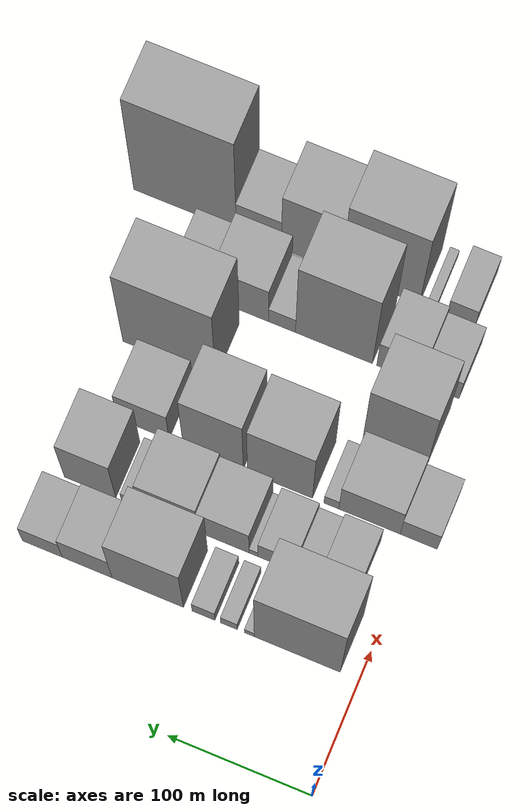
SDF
<sdf version="1.6">
 <world name="default">
  <model name="building_22">
   <static>1</static>
   <pose>100.0000 43.3936 0 0.000000 0.000000 0.000000</pose>
   <link name="link">
    <pose>0 0 82.50 0 0 0</pose>
    <collision name="collision"><geometry><box><size>40.0000 59.7189 165.0000</size></box></geometry></collision>
    <visual name="visual">
     <cast_shadows>0</cast_shadows>
     <geometry><box><size>40.0000 59.7189 165.0000</size></box></geometry>
     <material>
      <script>
       <uri>model://grey_wall/materials/scripts</uri>
       <uri>model://grey_wall/materials/textures</uri>
       <name>vrc/grey_wall</name>
      </script>
     </material>
    </visual>
   </link>
  </model>
  <model name="building_23">
   <static>1</static>
   <pose>100.0000 76.6870 0 0.000000 0.000000 0.000000</pose>
   <link name="link">
    <pose>0 0 7.50 0 0 0</pose>
    <collision name="collision"><geometry><box><size>40.0000 6.8679 15.0000</size></box></geometry></collision>
    <visual name="visual">
     <cast_shadows>0</cast_shadows>
     <geometry><box><size>40.0000 6.8679 15.0000</size></box></geometry>
     <material>
      <script>
       <uri>model://grey_wall/materials/scripts</uri>
       <uri>model://grey_wall/materials/textures</uri>
       <name>vrc/grey_wall</name>
      </script>
     </material>
    </visual>
   </link>
  </model>
  <model name="building_24">
   <static>1</static>
   <pose>100.0000 90.9002 0 0.000000 0.000000 0.000000</pose>
   <link name="link">
    <pose>0 0 12.00 0 0 0</pose>
    <collision name="collision"><geometry><box><size>40.0000 11.5585 24.0000</size></box></geometry></collision>
    <visual name="visual">
     <cast_shadows>0</cast_shadows>
     <geometry><box><size>40.0000 11.5585 24.0000</size></box></geometry>
     <material>
      <script>
       <uri>model://grey_wall/materials/scripts</uri>
       <uri>model://grey_wall/materials/textures</uri>
       <name>vrc/grey_wall</name>
      </script>
     </material>
    </visual>
   </link>
  </model>
  <model name="building_25">
   <static>1</static>
   <pose>100.0000 108.6364 0 0.000000 0.000000 0.000000</pose>
   <link name="link">
    <pose>0 0 15.00 0 0 0</pose>
    <collision name="collision"><geometry><box><size>40.0000 15.9138 30.0000</size></box></geometry></collision>
    <visual name="visual">
     <cast_shadows>0</cast_shadows>
     <geometry><box><size>40.0000 15.9138 30.0000</size></box></geometry>
     <material>
      <script>
       <uri>model://grey_wall/materials/scripts</uri>
       <uri>model://grey_wall/materials/textures</uri>
       <name>vrc/grey_wall</name>
      </script>
     </material>
    </visual>
   </link>
  </model>
  <model name="building_26">
   <static>1</static>
   <pose>100.0000 147.6354 0 0.000000 0.000000 0.000000</pose>
   <link name="link">
    <pose>0 0 63.00 0 0 0</pose>
    <collision name="collision"><geometry><box><size>40.0000 50.0843 126.0000</size></box></geometry></collision>
    <visual name="visual">
     <cast_shadows>0</cast_shadows>
     <geometry><box><size>40.0000 50.0843 126.0000</size></box></geometry>
     <material>
      <script>
       <uri>model://grey_wall/materials/scripts</uri>
       <uri>model://grey_wall/materials/textures</uri>
       <name>vrc/grey_wall</name>
      </script>
     </material>
    </visual>
   </link>
  </model>
  <model name="building_27">
   <static>1</static>
   <pose>100.0000 190.1945 0 0.000000 0.000000 0.000000</pose>
   <link name="link">
    <pose>0 0 31.50 0 0 0</pose>
    <collision name="collision"><geometry><box><size>40.0000 35.0339 63.0000</size></box></geometry></collision>
    <visual name="visual">
     <cast_shadows>0</cast_shadows>
     <geometry><box><size>40.0000 35.0339 63.0000</size></box></geometry>
     <material>
      <script>
       <uri>model://grey_wall/materials/scripts</uri>
       <uri>model://grey_wall/materials/textures</uri>
       <name>vrc/grey_wall</name>
      </script>
     </material>
    </visual>
   </link>
  </model>
  <model name="building_28">
   <static>1</static>
   <pose>100.0000 221.5984 0 0.000000 0.000000 0.000000</pose>
   <link name="link">
    <pose>0 0 24.00 0 0 0</pose>
    <collision name="collision"><geometry><box><size>40.0000 27.7739 48.0000</size></box></geometry></collision>
    <visual name="visual">
     <cast_shadows>0</cast_shadows>
     <geometry><box><size>40.0000 27.7739 48.0000</size></box></geometry>
     <material>
      <script>
       <uri>model://grey_wall/materials/scripts</uri>
       <uri>model://grey_wall/materials/textures</uri>
       <name>vrc/grey_wall</name>
      </script>
     </material>
    </visual>
   </link>
  </model>
  <model name="building_69">
   <static>1</static>
   <pose>149.0000 34.6953 0 0.000000 0.000000 0.000000</pose>
   <link name="link">
    <pose>0 0 22.50 0 0 0</pose>
    <collision name="collision"><geometry><box><size>40.0000 26.3077 45.0000</size></box></geometry></collision>
    <visual name="visual">
     <cast_shadows>0</cast_shadows>
     <geometry><box><size>40.0000 26.3077 45.0000</size></box></geometry>
     <material>
      <script>
       <uri>model://grey_wall/materials/scripts</uri>
       <uri>model://grey_wall/materials/textures</uri>
       <name>vrc/grey_wall</name>
      </script>
     </material>
    </visual>
   </link>
  </model>
  <model name="building_70">
   <static>1</static>
   <pose>149.0000 56.5618 0 0.000000 0.000000 0.000000</pose>
   <link name="link">
    <pose>0 0 15.00 0 0 0</pose>
    <collision name="collision"><geometry><box><size>40.0000 17.4253 30.0000</size></box></geometry></collision>
    <visual name="visual">
     <cast_shadows>0</cast_shadows>
     <geometry><box><size>40.0000 17.4253 30.0000</size></box></geometry>
     <material>
      <script>
       <uri>model://grey_wall/materials/scripts</uri>
       <uri>model://grey_wall/materials/textures</uri>
       <name>vrc/grey_wall</name>
      </script>
     </material>
    </visual>
   </link>
  </model>
  <model name="building_71">
   <static>1</static>
   <pose>149.0000 78.2791 0 0.000000 0.000000 0.000000</pose>
   <link name="link">
    <pose>0 0 22.50 0 0 0</pose>
    <collision name="collision"><geometry><box><size>40.0000 26.0093 45.0000</size></box></geometry></collision>
    <visual name="visual">
     <cast_shadows>0</cast_shadows>
     <geometry><box><size>40.0000 26.0093 45.0000</size></box></geometry>
     <material>
      <script>
       <uri>model://grey_wall/materials/scripts</uri>
       <uri>model://grey_wall/materials/textures</uri>
       <name>vrc/grey_wall</name>
      </script>
     </material>
    </visual>
   </link>
  </model>
  <model name="building_72">
   <static>1</static>
   <pose>149.0000 94.3080 0 0.000000 0.000000 0.000000</pose>
   <link name="link">
    <pose>0 0 7.50 0 0 0</pose>
    <collision name="collision"><geometry><box><size>40.0000 6.0483 15.0000</size></box></geometry></collision>
    <visual name="visual">
     <cast_shadows>0</cast_shadows>
     <geometry><box><size>40.0000 6.0483 15.0000</size></box></geometry>
     <material>
      <script>
       <uri>model://grey_wall/materials/scripts</uri>
       <uri>model://grey_wall/materials/textures</uri>
       <name>vrc/grey_wall</name>
      </script>
     </material>
    </visual>
   </link>
  </model>
  <model name="building_73">
   <static>1</static>
   <pose>149.0000 115.4321 0 0.000000 0.000000 0.000000</pose>
   <link name="link">
    <pose>0 0 33.00 0 0 0</pose>
    <collision name="collision"><geometry><box><size>40.0000 36.2000 66.0000</size></box></geometry></collision>
    <visual name="visual">
     <cast_shadows>0</cast_shadows>
     <geometry><box><size>40.0000 36.2000 66.0000</size></box></geometry>
     <material>
      <script>
       <uri>model://grey_wall/materials/scripts</uri>
       <uri>model://grey_wall/materials/textures</uri>
       <name>vrc/grey_wall</name>
      </script>
     </material>
    </visual>
   </link>
  </model>
  <model name="building_74">
   <static>1</static>
   <pose>149.0000 154.6363 0 0.000000 0.000000 0.000000</pose>
   <link name="link">
    <pose>0 0 37.50 0 0 0</pose>
    <collision name="collision"><geometry><box><size>40.0000 42.2082 75.0000</size></box></geometry></collision>
    <visual name="visual">
     <cast_shadows>0</cast_shadows>
     <geometry><box><size>40.0000 42.2082 75.0000</size></box></geometry>
     <material>
      <script>
       <uri>model://grey_wall/materials/scripts</uri>
       <uri>model://grey_wall/materials/textures</uri>
       <name>vrc/grey_wall</name>
      </script>
     </material>
    </visual>
   </link>
  </model>
  <model name="building_75">
   <static>1</static>
   <pose>149.0000 181.4023 0 0.000000 0.000000 0.000000</pose>
   <link name="link">
    <pose>0 0 12.00 0 0 0</pose>
    <collision name="collision"><geometry><box><size>40.0000 11.3238 24.0000</size></box></geometry></collision>
    <visual name="visual">
     <cast_shadows>0</cast_shadows>
     <geometry><box><size>40.0000 11.3238 24.0000</size></box></geometry>
     <material>
      <script>
       <uri>model://grey_wall/materials/scripts</uri>
       <uri>model://grey_wall/materials/textures</uri>
       <name>vrc/grey_wall</name>
      </script>
     </material>
    </visual>
   </link>
  </model>
  <model name="building_76">
   <static>1</static>
   <pose>149.0000 209.1817 0 0.000000 0.000000 0.000000</pose>
   <link name="link">
    <pose>0 0 51.00 0 0 0</pose>
    <collision name="collision"><geometry><box><size>40.0000 36.2350 102.0000</size></box></geometry></collision>
    <visual name="visual">
     <cast_shadows>0</cast_shadows>
     <geometry><box><size>40.0000 36.2350 102.0000</size></box></geometry>
     <material>
      <script>
       <uri>model://grey_wall/materials/scripts</uri>
       <uri>model://grey_wall/materials/textures</uri>
       <name>vrc/grey_wall</name>
      </script>
     </material>
    </visual>
   </link>
  </model>
  <model name="building_123">
   <static>1</static>
   <pose>198.0000 -1.2644 0 0.000000 0.000000 0.000000</pose>
   <link name="link">
    <pose>0 0 24.00 0 0 0</pose>
    <collision name="collision"><geometry><box><size>40.0000 25.8420 48.0000</size></box></geometry></collision>
    <visual name="visual">
     <cast_shadows>0</cast_shadows>
     <geometry><box><size>40.0000 25.8420 48.0000</size></box></geometry>
     <material>
      <script>
       <uri>model://grey_wall/materials/scripts</uri>
       <uri>model://grey_wall/materials/textures</uri>
       <name>vrc/grey_wall</name>
      </script>
     </material>
    </visual>
   </link>
  </model>
  <model name="building_124">
   <static>1</static>
   <pose>198.0000 33.1435 0 0.000000 0.000000 0.000000</pose>
   <link name="link">
    <pose>0 0 36.00 0 0 0</pose>
    <collision name="collision"><geometry><box><size>40.0000 42.9737 72.0000</size></box></geometry></collision>
    <visual name="visual">
     <cast_shadows>0</cast_shadows>
     <geometry><box><size>40.0000 42.9737 72.0000</size></box></geometry>
     <material>
      <script>
       <uri>model://grey_wall/materials/scripts</uri>
       <uri>model://grey_wall/materials/textures</uri>
       <name>vrc/grey_wall</name>
      </script>
     </material>
    </visual>
   </link>
  </model>
  <model name="building_125">
   <static>1</static>
   <pose>198.0000 59.8901 0 0.000000 0.000000 0.000000</pose>
   <link name="link">
    <pose>0 0 12.00 0 0 0</pose>
    <collision name="collision"><geometry><box><size>40.0000 10.5196 24.0000</size></box></geometry></collision>
    <visual name="visual">
     <cast_shadows>0</cast_shadows>
     <geometry><box><size>40.0000 10.5196 24.0000</size></box></geometry>
     <material>
      <script>
       <uri>model://grey_wall/materials/scripts</uri>
       <uri>model://grey_wall/materials/textures</uri>
       <name>vrc/grey_wall</name>
      </script>
     </material>
    </visual>
   </link>
  </model>
  <model name="building_126">
   <static>1</static>
   <pose>198.0000 96.0123 0 0.000000 0.000000 0.000000</pose>
   <link name="link">
    <pose>0 0 63.00 0 0 0</pose>
    <collision name="collision"><geometry><box><size>40.0000 45.7249 126.0000</size></box></geometry></collision>
    <visual name="visual">
     <cast_shadows>0</cast_shadows>
     <geometry><box><size>40.0000 45.7249 126.0000</size></box></geometry>
     <material>
      <script>
       <uri>model://grey_wall/materials/scripts</uri>
       <uri>model://grey_wall/materials/textures</uri>
       <name>vrc/grey_wall</name>
      </script>
     </material>
    </visual>
   </link>
  </model>
  <model name="building_127">
   <static>1</static>
   <pose>198.0000 143.0758 0 0.000000 0.000000 0.000000</pose>
   <link name="link">
    <pose>0 0 66.00 0 0 0</pose>
    <collision name="collision"><geometry><box><size>40.0000 42.4020 132.0000</size></box></geometry></collision>
    <visual name="visual">
     <cast_shadows>0</cast_shadows>
     <geometry><box><size>40.0000 42.4020 132.0000</size></box></geometry>
     <material>
      <script>
       <uri>model://grey_wall/materials/scripts</uri>
       <uri>model://grey_wall/materials/textures</uri>
       <name>vrc/grey_wall</name>
      </script>
     </material>
    </visual>
   </link>
  </model>
  <model name="building_128">
   <static>1</static>
   <pose>198.0000 192.6406 0 0.000000 0.000000 0.000000</pose>
   <link name="link">
    <pose>0 0 34.50 0 0 0</pose>
    <collision name="collision"><geometry><box><size>40.0000 36.7275 69.0000</size></box></geometry></collision>
    <visual name="visual">
     <cast_shadows>0</cast_shadows>
     <geometry><box><size>40.0000 36.7275 69.0000</size></box></geometry>
     <material>
      <script>
       <uri>model://grey_wall/materials/scripts</uri>
       <uri>model://grey_wall/materials/textures</uri>
       <name>vrc/grey_wall</name>
      </script>
     </material>
    </visual>
   </link>
  </model>
  <model name="building_168">
   <static>1</static>
   <pose>247.0000 35.2082 0 0.000000 0.000000 0.000000</pose>
   <link name="link">
    <pose>0 0 70.50 0 0 0</pose>
    <collision name="collision"><geometry><box><size>40.0000 45.2561 141.0000</size></box></geometry></collision>
    <visual name="visual">
     <cast_shadows>0</cast_shadows>
     <geometry><box><size>40.0000 45.2561 141.0000</size></box></geometry>
     <material>
      <script>
       <uri>model://grey_wall/materials/scripts</uri>
       <uri>model://grey_wall/materials/textures</uri>
       <name>vrc/grey_wall</name>
      </script>
     </material>
    </visual>
   </link>
  </model>
  <model name="building_169">
   <static>1</static>
   <pose>247.0000 194.8895 0 0.000000 0.000000 0.000000</pose>
   <link name="link">
    <pose>0 0 84.00 0 0 0</pose>
    <collision name="collision"><geometry><box><size>40.0000 66.0355 168.0000</size></box></geometry></collision>
    <visual name="visual">
     <cast_shadows>0</cast_shadows>
     <geometry><box><size>40.0000 66.0355 168.0000</size></box></geometry>
     <material>
      <script>
       <uri>model://grey_wall/materials/scripts</uri>
       <uri>model://grey_wall/materials/textures</uri>
       <name>vrc/grey_wall</name>
      </script>
     </material>
    </visual>
   </link>
  </model>
  <model name="building_211">
   <static>1</static>
   <pose>296.0000 23.0819 0 0.000000 0.000000 0.000000</pose>
   <link name="link">
    <pose>0 0 22.50 0 0 0</pose>
    <collision name="collision"><geometry><box><size>40.0000 26.4481 45.0000</size></box></geometry></collision>
    <visual name="visual">
     <cast_shadows>0</cast_shadows>
     <geometry><box><size>40.0000 26.4481 45.0000</size></box></geometry>
     <material>
      <script>
       <uri>model://grey_wall/materials/scripts</uri>
       <uri>model://grey_wall/materials/textures</uri>
       <name>vrc/grey_wall</name>
      </script>
     </material>
    </visual>
   </link>
  </model>
  <model name="building_212">
   <static>1</static>
   <pose>296.0000 52.1793 0 0.000000 0.000000 0.000000</pose>
   <link name="link">
    <pose>0 0 30.00 0 0 0</pose>
    <collision name="collision"><geometry><box><size>40.0000 31.7467 60.0000</size></box></geometry></collision>
    <visual name="visual">
     <cast_shadows>0</cast_shadows>
     <geometry><box><size>40.0000 31.7467 60.0000</size></box></geometry>
     <material>
      <script>
       <uri>model://grey_wall/materials/scripts</uri>
       <uri>model://grey_wall/materials/textures</uri>
       <name>vrc/grey_wall</name>
      </script>
     </material>
    </visual>
   </link>
  </model>
  <model name="building_213">
   <static>1</static>
   <pose>296.0000 98.3524 0 0.000000 0.000000 0.000000</pose>
   <link name="link">
    <pose>0 0 81.00 0 0 0</pose>
    <collision name="collision"><geometry><box><size>40.0000 54.5994 162.0000</size></box></geometry></collision>
    <visual name="visual">
     <cast_shadows>0</cast_shadows>
     <geometry><box><size>40.0000 54.5994 162.0000</size></box></geometry>
     <material>
      <script>
       <uri>model://grey_wall/materials/scripts</uri>
       <uri>model://grey_wall/materials/textures</uri>
       <name>vrc/grey_wall</name>
      </script>
     </material>
    </visual>
   </link>
  </model>
  <model name="building_214">
   <static>1</static>
   <pose>296.0000 135.2148 0 0.000000 0.000000 0.000000</pose>
   <link name="link">
    <pose>0 0 16.50 0 0 0</pose>
    <collision name="collision"><geometry><box><size>40.0000 19.1254 33.0000</size></box></geometry></collision>
    <visual name="visual">
     <cast_shadows>0</cast_shadows>
     <geometry><box><size>40.0000 19.1254 33.0000</size></box></geometry>
     <material>
      <script>
       <uri>model://grey_wall/materials/scripts</uri>
       <uri>model://grey_wall/materials/textures</uri>
       <name>vrc/grey_wall</name>
      </script>
     </material>
    </visual>
   </link>
  </model>
  <model name="building_215">
   <static>1</static>
   <pose>296.0000 164.5422 0 0.000000 0.000000 0.000000</pose>
   <link name="link">
    <pose>0 0 39.00 0 0 0</pose>
    <collision name="collision"><geometry><box><size>40.0000 39.5294 78.0000</size></box></geometry></collision>
    <visual name="visual">
     <cast_shadows>0</cast_shadows>
     <geometry><box><size>40.0000 39.5294 78.0000</size></box></geometry>
     <material>
      <script>
       <uri>model://grey_wall/materials/scripts</uri>
       <uri>model://grey_wall/materials/textures</uri>
       <name>vrc/grey_wall</name>
      </script>
     </material>
    </visual>
   </link>
  </model>
  <model name="building_216">
   <static>1</static>
   <pose>296.0000 198.0750 0 0.000000 0.000000 0.000000</pose>
   <link name="link">
    <pose>0 0 25.50 0 0 0</pose>
    <collision name="collision"><geometry><box><size>40.0000 27.5362 51.0000</size></box></geometry></collision>
    <visual name="visual">
     <cast_shadows>0</cast_shadows>
     <geometry><box><size>40.0000 27.5362 51.0000</size></box></geometry>
     <material>
      <script>
       <uri>model://grey_wall/materials/scripts</uri>
       <uri>model://grey_wall/materials/textures</uri>
       <name>vrc/grey_wall</name>
      </script>
     </material>
    </visual>
   </link>
  </model>
  <model name="building_263">
   <static>1</static>
   <pose>345.0000 28.1547 0 0.000000 0.000000 0.000000</pose>
   <link name="link">
    <pose>0 0 19.50 0 0 0</pose>
    <collision name="collision"><geometry><box><size>40.0000 19.9760 39.0000</size></box></geometry></collision>
    <visual name="visual">
     <cast_shadows>0</cast_shadows>
     <geometry><box><size>40.0000 19.9760 39.0000</size></box></geometry>
     <material>
      <script>
       <uri>model://grey_wall/materials/scripts</uri>
       <uri>model://grey_wall/materials/textures</uri>
       <name>vrc/grey_wall</name>
      </script>
     </material>
    </visual>
   </link>
  </model>
  <model name="building_264">
   <static>1</static>
   <pose>345.0000 49.3933 0 0.000000 0.000000 0.000000</pose>
   <link name="link">
    <pose>0 0 7.50 0 0 0</pose>
    <collision name="collision"><geometry><box><size>40.0000 6.5011 15.0000</size></box></geometry></collision>
    <visual name="visual">
     <cast_shadows>0</cast_shadows>
     <geometry><box><size>40.0000 6.5011 15.0000</size></box></geometry>
     <material>
      <script>
       <uri>model://grey_wall/materials/scripts</uri>
       <uri>model://grey_wall/materials/textures</uri>
       <name>vrc/grey_wall</name>
      </script>
     </material>
    </visual>
   </link>
  </model>
  <model name="building_265">
   <static>1</static>
   <pose>345.0000 85.0292 0 0.000000 0.000000 0.000000</pose>
   <link name="link">
    <pose>0 0 78.00 0 0 0</pose>
    <collision name="collision"><geometry><box><size>40.0000 54.7708 156.0000</size></box></geometry></collision>
    <visual name="visual">
     <cast_shadows>0</cast_shadows>
     <geometry><box><size>40.0000 54.7708 156.0000</size></box></geometry>
     <material>
      <script>
       <uri>model://grey_wall/materials/scripts</uri>
       <uri>model://grey_wall/materials/textures</uri>
       <name>vrc/grey_wall</name>
      </script>
     </material>
    </visual>
   </link>
  </model>
  <model name="building_266">
   <static>1</static>
   <pose>345.0000 134.2586 0 0.000000 0.000000 0.000000</pose>
   <link name="link">
    <pose>0 0 60.00 0 0 0</pose>
    <collision name="collision"><geometry><box><size>40.0000 43.6879 120.0000</size></box></geometry></collision>
    <visual name="visual">
     <cast_shadows>0</cast_shadows>
     <geometry><box><size>40.0000 43.6879 120.0000</size></box></geometry>
     <material>
      <script>
       <uri>model://grey_wall/materials/scripts</uri>
       <uri>model://grey_wall/materials/textures</uri>
       <name>vrc/grey_wall</name>
      </script>
     </material>
    </visual>
   </link>
  </model>
  <model name="building_267">
   <static>1</static>
   <pose>345.0000 172.1790 0 0.000000 0.000000 0.000000</pose>
   <link name="link">
    <pose>0 0 31.50 0 0 0</pose>
    <collision name="collision"><geometry><box><size>40.0000 32.1531 63.0000</size></box></geometry></collision>
    <visual name="visual">
     <cast_shadows>0</cast_shadows>
     <geometry><box><size>40.0000 32.1531 63.0000</size></box></geometry>
     <material>
      <script>
       <uri>model://grey_wall/materials/scripts</uri>
       <uri>model://grey_wall/materials/textures</uri>
       <name>vrc/grey_wall</name>
      </script>
     </material>
    </visual>
   </link>
  </model>
  <model name="building_268">
   <static>1</static>
   <pose>345.0000 225.1261 0 0.000000 0.000000 0.000000</pose>
   <link name="link">
    <pose>0 0 96.00 0 0 0</pose>
    <collision name="collision"><geometry><box><size>40.0000 73.7411 192.0000</size></box></geometry></collision>
    <visual name="visual">
     <cast_shadows>0</cast_shadows>
     <geometry><box><size>40.0000 73.7411 192.0000</size></box></geometry>
     <material>
      <script>
       <uri>model://grey_wall/materials/scripts</uri>
       <uri>model://grey_wall/materials/textures</uri>
       <name>vrc/grey_wall</name>
      </script>
     </material>
    </visual>
   </link>
  </model>
 </world>
</sdf>
